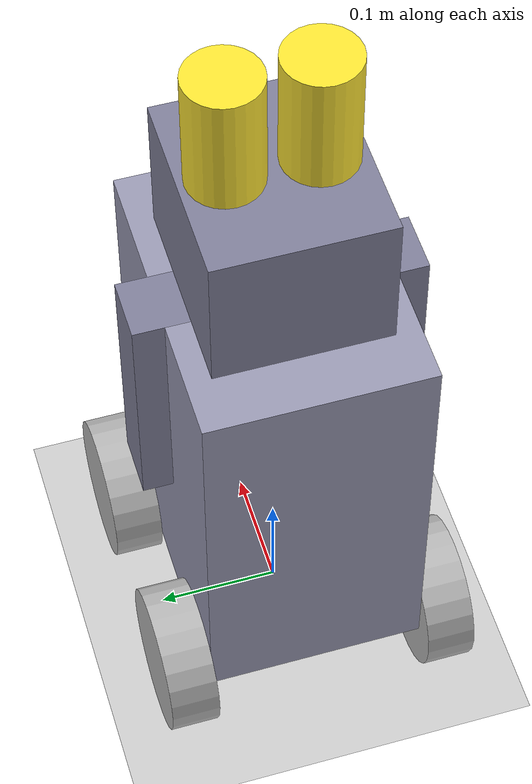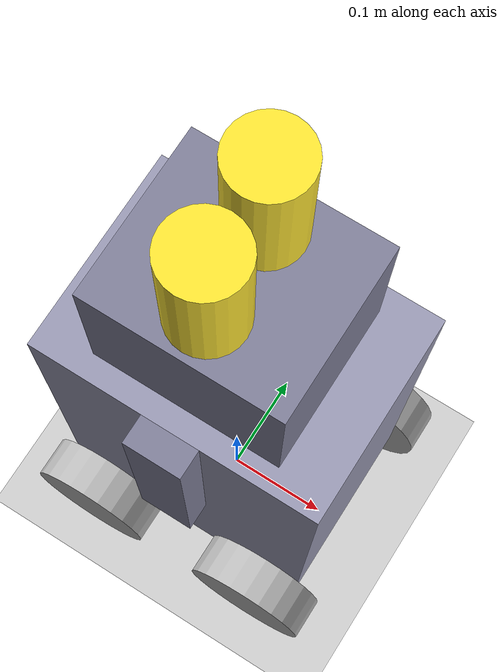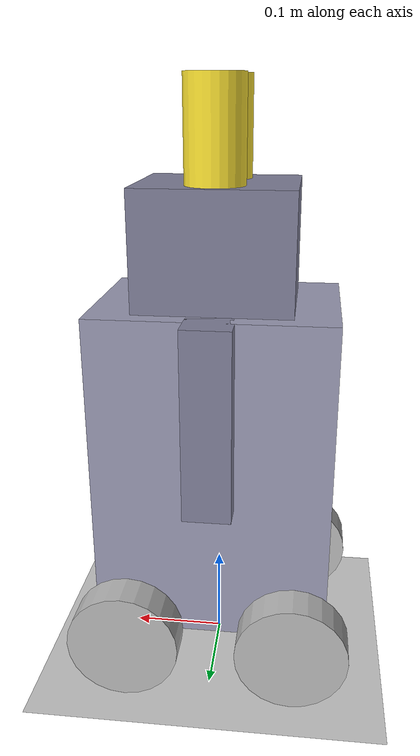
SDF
<?xml version="1.0"?>
<sdf version="1.9">
  <world name="ex04">
    <physics name="default_physics" type="dart">
      <max_step_size>0.001</max_step_size>
      <real_time_factor>1.0</real_time_factor>
    </physics>

    <!-- Земля -->
    <model name="ground_plane">
      <static>true</static>
      <link name="link">
        <collision name="collision">
          <geometry>
            <plane>
              <normal>0 0 1</normal>
              <size>100 100</size>
            </plane>
          </geometry>
        </collision>
        <visual name="visual">
          <geometry>
            <plane>
              <normal>0 0 1</normal>
              <size>100 100</size>
            </plane>
          </geometry>
        </visual>
      </link>
    </model>

    <model name="robot_hare_wheel_bot">
      <!-- ВАЖНО: z=0 => колёса центром на z=0.06 касаются земли -->
      <pose>0 0 0 0 0 0</pose>

      <link name="base_link">
        <inertial>
          <pose>0 0 0.235 0 0 0</pose>
          <mass>3.5</mass>
          <inertia>
            <ixx>0.12</ixx><ixy>0</ixy><ixz>0</ixz>
            <iyy>0.12</iyy><iyz>0</iyz>
            <izz>0.15</izz>
          </inertia>
        </inertial>

        <collision name="base_collision">
          <pose>0 0 0.235 0 0 0</pose>
          <geometry><box><size>0.25 0.18 0.35</size></box></geometry>
        </collision>

        <visual name="base_visual">
          <pose>0 0 0.235 0 0 0</pose>
          <geometry><box><size>0.25 0.18 0.35</size></box></geometry>
          <material>
            <ambient>0.6 0.6 0.7 1</ambient>
            <diffuse>0.6 0.6 0.7 1</diffuse>
          </material>
        </visual>
      </link>

      <!-- HEAD -->
      <link name="head_link">
        <!-- head_joint origin: 0 0 (base_origin_z + base_z/2) = 0.235+0.175=0.41 -->
        <pose>0 0 0.41 0 0 0</pose>
        <inertial>
          <mass>1.0</mass>
          <inertia>
            <ixx>0.02</ixx><ixy>0</ixy><ixz>0</ixz>
            <iyy>0.02</iyy><iyz>0</iyz>
            <izz>0.02</izz>
          </inertia>
        </inertial>

        <collision name="head_collision">
          <!-- head_origin_z=0.06 -->
          <pose>0 0 0.06 0 0 0</pose>
          <geometry><box><size>0.16 0.14 0.12</size></box></geometry>
        </collision>

        <visual name="head_visual">
          <pose>0 0 0.06 0 0 0</pose>
          <geometry><box><size>0.16 0.14 0.12</size></box></geometry>
          <material>
            <ambient>0.5 0.5 0.6 1</ambient>
            <diffuse>0.5 0.5 0.6 1</diffuse>
          </material>
        </visual>
      </link>

      <joint name="head_joint" type="fixed">
        <parent>base_link</parent>
        <child>head_link</child>
      </joint>

      <!-- EARS (fixed к head_link) -->
      <link name="left_ear">
        <pose>0 0 0.41 0 0 0</pose>
        <inertial>
          <mass>0.1</mass>
          <inertia>
            <ixx>0.0002</ixx><ixy>0</ixy><ixz>0</ixz>
            <iyy>0.0002</iyy><iyz>0</iyz>
            <izz>0.0001</izz>
          </inertia>
        </inertial>
        <collision name="c">
          <pose>0 0.035 0.16 0 0 0</pose>
          <geometry><cylinder><radius>0.03</radius><length>0.12</length></cylinder></geometry>
        </collision>
        <visual name="v">
          <pose>0 0.035 0.16 0 0 0</pose>
          <geometry><cylinder><radius>0.03</radius><length>0.12</length></cylinder></geometry>
          <material><diffuse>1.0 0.9 0.2 1</diffuse></material>
        </visual>
      </link>

      <joint name="left_ear_joint" type="fixed">
        <parent>head_link</parent>
        <child>left_ear</child>
      </joint>

      <link name="right_ear">
        <pose>0 0 0.41 0 0 0</pose>
        <inertial>
          <mass>0.1</mass>
          <inertia>
            <ixx>0.0002</ixx><ixy>0</ixy><ixz>0</ixz>
            <iyy>0.0002</iyy><iyz>0</iyz>
            <izz>0.0001</izz>
          </inertia>
        </inertial>
        <collision name="c">
          <pose>0 -0.035 0.16 0 0 0</pose>
          <geometry><cylinder><radius>0.03</radius><length>0.12</length></cylinder></geometry>
        </collision>
        <visual name="v">
          <pose>0 -0.035 0.16 0 0 0</pose>
          <geometry><cylinder><radius>0.03</radius><length>0.12</length></cylinder></geometry>
          <material><diffuse>1.0 0.9 0.2 1</diffuse></material>
        </visual>
      </link>

      <joint name="right_ear_joint" type="fixed">
        <parent>head_link</parent>
        <child>right_ear</child>
      </joint>

      <!-- ARMS (fixed к base_link) -->
      <link name="left_arm">
        <pose>0 0 0 0 0 0</pose>
        <inertial>
          <mass>0.3</mass>
          <inertia>
            <ixx>0.005</ixx><ixy>0</ixy><ixz>0</ixz>
            <iyy>0.005</iyy><iyz>0</iyz>
            <izz>0.005</izz>
          </inertia>
        </inertial>

        <!-- arm_origin_z = base_origin_z + base_z/2 - arm_z/2 = 0.235+0.175-0.10=0.31 -->
        <collision name="c">
          <pose>0 0.09 0.31 0 0 0</pose>
          <geometry><box><size>0.05 0.05 0.20</size></box></geometry>
        </collision>
        <visual name="v">
          <pose>0 0.09 0.31 0 0 0</pose>
          <geometry><box><size>0.05 0.05 0.20</size></box></geometry>
          <material><diffuse>0.5 0.5 0.6 1</diffuse></material>
        </visual>
      </link>

      <joint name="left_arm_joint" type="fixed">
        <parent>base_link</parent>
        <child>left_arm</child>
      </joint>

      <link name="right_arm">
        <pose>0 0 0 0 0 0</pose>
        <inertial>
          <mass>0.3</mass>
          <inertia>
            <ixx>0.005</ixx><ixy>0</ixy><ixz>0</ixz>
            <iyy>0.005</iyy><iyz>0</iyz>
            <izz>0.005</izz>
          </inertia>
        </inertial>

        <collision name="c">
          <pose>0 -0.09 0.31 0 0 0</pose>
          <geometry><box><size>0.05 0.05 0.20</size></box></geometry>
        </collision>
        <visual name="v">
          <pose>0 -0.09 0.31 0 0 0</pose>
          <geometry><box><size>0.05 0.05 0.20</size></box></geometry>
          <material><diffuse>0.5 0.5 0.6 1</diffuse></material>
        </visual>
      </link>

      <joint name="right_arm_joint" type="fixed">
        <parent>base_link</parent>
        <child>right_arm</child>
      </joint>

    <!-- ===== WHEELS ===== -->
<link name="front_left_wheel_link">
  <!-- колесо сидит ровно на joint-фрейме -->
  <pose relative_to="front_left_wheel_joint">0 0 0 0 0 0</pose>

  <inertial>
    <mass>0.25</mass>
    <inertia>
      <ixx>0.003</ixx><ixy>0</ixy><ixz>0</ixz>
      <iyy>0.003</iyy><iyz>0</iyz>
      <izz>0.003</izz>
    </inertia>
  </inertial>

  <collision name="c">
    <!-- цилиндр повернут как в URDF -->
    <pose>0 0 0 1.5708 0 0</pose>
    <geometry><cylinder><radius>0.06</radius><length>0.04</length></cylinder></geometry>
    <surface>
      <friction><ode><mu>1.2</mu><mu2>1.2</mu2></ode></friction>
    </surface>
  </collision>

  <visual name="v">
    <pose>0 0 0 1.5708 0 0</pose>
    <geometry><cylinder><radius>0.06</radius><length>0.04</length></cylinder></geometry>
  </visual>
</link>

<link name="front_right_wheel_link">
  <pose relative_to="front_right_wheel_joint">0 0 0 0 0 0</pose>
  <inertial><mass>0.25</mass>
    <inertia><ixx>0.003</ixx><ixy>0</ixy><ixz>0</ixz><iyy>0.003</iyy><iyz>0</iyz><izz>0.003</izz></inertia>
  </inertial>
  <collision name="c">
    <pose>0 0 0 1.5708 0 0</pose>
    <geometry><cylinder><radius>0.06</radius><length>0.04</length></cylinder></geometry>
    <surface><friction><ode><mu>1.2</mu><mu2>1.2</mu2></ode></friction></surface>
  </collision>
  <visual name="v">
    <pose>0 0 0 1.5708 0 0</pose>
    <geometry><cylinder><radius>0.06</radius><length>0.04</length></cylinder></geometry>
  </visual>
</link>

<link name="rear_left_wheel_link">
  <pose relative_to="rear_left_wheel_joint">0 0 0 0 0 0</pose>
  <inertial><mass>0.25</mass>
    <inertia><ixx>0.003</ixx><ixy>0</ixy><ixz>0</ixz><iyy>0.003</iyy><iyz>0</iyz><izz>0.003</izz></inertia>
  </inertial>
  <collision name="c">
    <pose>0 0 0 1.5708 0 0</pose>
    <geometry><cylinder><radius>0.06</radius><length>0.04</length></cylinder></geometry>
    <surface><friction><ode><mu>1.2</mu><mu2>1.2</mu2></ode></friction></surface>
  </collision>
  <visual name="v">
    <pose>0 0 0 1.5708 0 0</pose>
    <geometry><cylinder><radius>0.06</radius><length>0.04</length></cylinder></geometry>
  </visual>
</link>

<link name="rear_right_wheel_link">
  <pose relative_to="rear_right_wheel_joint">0 0 0 0 0 0</pose>
  <inertial><mass>0.25</mass>
    <inertia><ixx>0.003</ixx><ixy>0</ixy><ixz>0</ixz><iyy>0.003</iyy><iyz>0</iyz><izz>0.003</izz></inertia>
  </inertial>
  <collision name="c">
    <pose>0 0 0 1.5708 0 0</pose>
    <geometry><cylinder><radius>0.06</radius><length>0.04</length></cylinder></geometry>
    <surface><friction><ode><mu>1.2</mu><mu2>1.2</mu2></ode></friction></surface>
  </collision>
  <visual name="v">
    <pose>0 0 0 1.5708 0 0</pose>
    <geometry><cylinder><radius>0.06</radius><length>0.04</length></cylinder></geometry>
  </visual>
</link>

<!-- ===== JOINTS: ось вращения в base_link, ровно в центре колеса ===== -->
<joint name="front_left_wheel_joint" type="revolute">
  <parent>base_link</parent>
  <child>front_left_wheel_link</child>
  <pose relative_to="base_link">0.09 0.11 0.06 0 0 0</pose>
  <axis><xyz>0 1 0</xyz></axis>
</joint>

<joint name="front_right_wheel_joint" type="revolute">
  <parent>base_link</parent>
  <child>front_right_wheel_link</child>
  <pose relative_to="base_link">0.09 -0.11 0.06 0 0 0</pose>
  <axis><xyz>0 1 0</xyz></axis>
</joint>

<joint name="rear_left_wheel_joint" type="revolute">
  <parent>base_link</parent>
  <child>rear_left_wheel_link</child>
  <pose relative_to="base_link">-0.09 0.11 0.06 0 0 0</pose>
  <axis><xyz>0 1 0</xyz></axis>
</joint>

<joint name="rear_right_wheel_joint" type="revolute">
  <parent>base_link</parent>
  <child>rear_right_wheel_link</child>
  <pose relative_to="base_link">-0.09 -0.11 0.06 0 0 0</pose>
  <axis><xyz>0 1 0</xyz></axis>
</joint>

      <!-- DiffDrive: едет по /model/robot_hare_wheel_bot/cmd_vel -->
      <plugin filename="gz-sim-diff-drive-system" name="gz::sim::systems::DiffDrive">
        <left_joint>front_left_wheel_joint</left_joint>
        <left_joint>rear_left_wheel_joint</left_joint>
        <right_joint>front_right_wheel_joint</right_joint>
        <right_joint>rear_right_wheel_joint</right_joint>

        <wheel_separation>0.22</wheel_separation>
        <wheel_radius>0.06</wheel_radius>

        <topic>/model/robot_hare_wheel_bot/cmd_vel</topic>
        <odom_topic>/model/robot_hare_wheel_bot/odometry</odom_topic>
        <tf_topic>/model/robot_hare_wheel_bot/tf</tf_topic>
        <frame_id>odom</frame_id>
        <child_frame_id>base_link</child_frame_id>
        <odom_publish_frequency>50</odom_publish_frequency>
      </plugin>

      <!-- Joint states для ROS (/joint_states через bridge) -->
      <plugin filename="gz-sim-joint-state-publisher-system" name="gz::sim::systems::JointStatePublisher"/>
    </model>

  </world>
</sdf>
